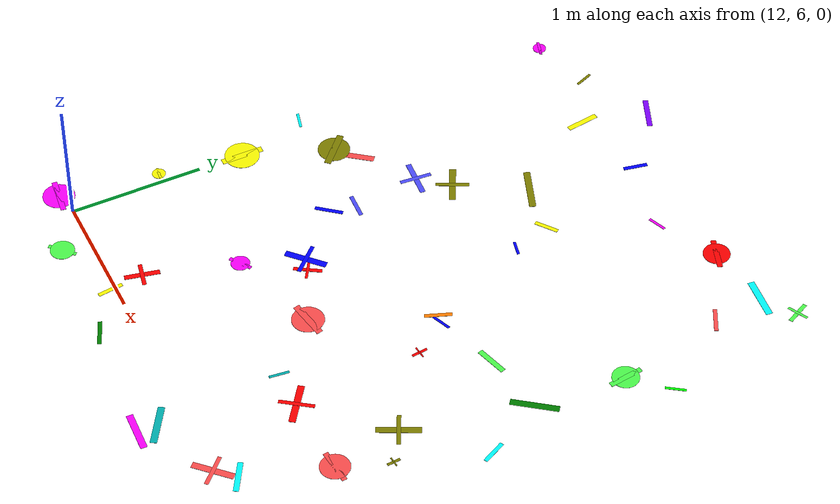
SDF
<sdf version="1.6">
 <world name="default">
  <model name="letter_G_2058">
   <static>true</static>
   <pose>11.82 5.96 0.011 0 0 6.152</pose>
   <link name="link">
    <visual name="visual">
     <geometry><box><size>0.29 0.04 0.002</size></box></geometry>
     <material>
      <ambient>1.0 0.0 1.0 1</ambient>
      <diffuse>1.0 0.0 1.0 1</diffuse>
      <specular>0.1 0.1 0.1 1</specular>
     </material>
    </visual>
    <visual name="visual2">
     <geometry><cylinder><radius>0.12</radius><length>0.002</length></cylinder></geometry>
     <material><ambient>1.0 0.0 1.0 1</ambient><diffuse>1.0 0.0 1.0 1</diffuse></material>
    </visual>
   </link>
  </model>
  <model name="letter_Q_2059">
   <static>true</static>
   <pose>12.33 5.79 0.006 0 0 3.908</pose>
   <link name="link">
    <visual name="visual">
     <geometry><box><size>0.22 0.03 0.002</size></box></geometry>
     <material>
      <ambient>0.3 1.0 0.3 1</ambient>
      <diffuse>0.3 1.0 0.3 1</diffuse>
      <specular>0.1 0.1 0.1 1</specular>
     </material>
    </visual>
    <visual name="visual2">
     <geometry><cylinder><radius>0.09</radius><length>0.002</length></cylinder></geometry>
     <material><ambient>0.3 1.0 0.3 1</ambient><diffuse>0.3 1.0 0.3 1</diffuse></material>
    </visual>
   </link>
  </model>
  <model name="letter_C_2060">
   <static>true</static>
   <pose>12.01 7.34 0.006 0 0 1.571</pose>
   <link name="link">
    <visual name="visual">
     <geometry><box><size>0.32 0.05 0.002</size></box></geometry>
     <material>
      <ambient>1.0 1.0 0.0 1</ambient>
      <diffuse>1.0 1.0 0.0 1</diffuse>
      <specular>0.1 0.1 0.1 1</specular>
     </material>
    </visual>
    <visual name="visual2">
     <geometry><cylinder><radius>0.13</radius><length>0.002</length></cylinder></geometry>
     <material><ambient>1.0 1.0 0.0 1</ambient><diffuse>1.0 1.0 0.0 1</diffuse></material>
    </visual>
   </link>
  </model>
  <model name="letter_O_2062">
   <static>true</static>
   <pose>11.92 6.71 0.008 0 0 6.177</pose>
   <link name="link">
    <visual name="visual">
     <geometry><box><size>0.11 0.02 0.002</size></box></geometry>
     <material>
      <ambient>1.0 1.0 0.0 1</ambient>
      <diffuse>1.0 1.0 0.0 1</diffuse>
      <specular>0.1 0.1 0.1 1</specular>
     </material>
    </visual>
    <visual name="visual2">
     <geometry><cylinder><radius>0.05</radius><length>0.002</length></cylinder></geometry>
     <material><ambient>1.0 1.0 0.0 1</ambient><diffuse>1.0 1.0 0.0 1</diffuse></material>
    </visual>
   </link>
  </model>
  <model name="letter_S_2063">
   <static>true</static>
   <pose>11.86 7.87 0.011 0 0 6.045</pose>
   <link name="link">
    <visual name="visual">
     <geometry><box><size>0.14 0.02 0.002</size></box></geometry>
     <material>
      <ambient>0.0 1.0 1.0 1</ambient>
      <diffuse>0.0 1.0 1.0 1</diffuse>
      <specular>0.1 0.1 0.1 1</specular>
     </material>
    </visual>
   </link>
  </model>
  <model name="letter_O_2064">
   <static>true</static>
   <pose>12.25 7.98 0.011 0 0 5.528</pose>
   <link name="link">
    <visual name="visual">
     <geometry><box><size>0.30 0.05 0.002</size></box></geometry>
     <material>
      <ambient>0.5 0.5 0.0 1</ambient>
      <diffuse>0.5 0.5 0.0 1</diffuse>
      <specular>0.1 0.1 0.1 1</specular>
     </material>
    </visual>
    <visual name="visual2">
     <geometry><cylinder><radius>0.12</radius><length>0.002</length></cylinder></geometry>
     <material><ambient>0.5 0.5 0.0 1</ambient><diffuse>0.5 0.5 0.0 1</diffuse></material>
    </visual>
   </link>
  </model>
  <model name="letter_B_2065">
   <static>true</static>
   <pose>12.37 8.08 0.009 0 0 4.063</pose>
   <link name="link">
    <visual name="visual">
     <geometry><box><size>0.32 0.05 0.002</size></box></geometry>
     <material>
      <ambient>1.0 0.3 0.3 1</ambient>
      <diffuse>1.0 0.3 0.3 1</diffuse>
      <specular>0.1 0.1 0.1 1</specular>
     </material>
    </visual>
   </link>
  </model>
  <model name="letter_Q_2068">
   <static>true</static>
   <pose>11.94 9.85 0.012 0 0 2.852</pose>
   <link name="link">
    <visual name="visual">
     <geometry><box><size>0.13 0.02 0.002</size></box></geometry>
     <material>
      <ambient>1.0 0.0 1.0 1</ambient>
      <diffuse>1.0 0.0 1.0 1</diffuse>
      <specular>0.1 0.1 0.1 1</specular>
     </material>
    </visual>
    <visual name="visual2">
     <geometry><cylinder><radius>0.05</radius><length>0.002</length></cylinder></geometry>
     <material><ambient>1.0 0.0 1.0 1</ambient><diffuse>1.0 0.0 1.0 1</diffuse></material>
    </visual>
   </link>
  </model>
  <model name="letter_Y_2069">
   <static>true</static>
   <pose>12.39 10.00 0.013 0 0 1.954</pose>
   <link name="link">
    <visual name="visual">
     <geometry><box><size>0.14 0.02 0.002</size></box></geometry>
     <material>
      <ambient>0.5 0.5 0.0 1</ambient>
      <diffuse>0.5 0.5 0.0 1</diffuse>
      <specular>0.1 0.1 0.1 1</specular>
     </material>
    </visual>
   </link>
  </model>
  <model name="letter_A_2137">
   <static>true</static>
   <pose>12.80 6.22 0.005 0 0 1.359</pose>
   <link name="link">
    <visual name="visual">
     <geometry><box><size>0.26 0.04 0.002</size></box></geometry>
     <material>
      <ambient>1.0 0.0 0.0 1</ambient>
      <diffuse>1.0 0.0 0.0 1</diffuse>
      <specular>0.1 0.1 0.1 1</specular>
     </material>
    </visual>
    <visual name="visual2">
     <pose>0 0 0.001 0 0 1.57</pose>
     <geometry><box><size>0.20 0.03 0.001</size></box></geometry>
     <material><ambient>1.0 0.0 0.0 1</ambient><diffuse>1.0 0.0 0.0 1</diffuse></material>
    </visual>
   </link>
  </model>
  <model name="letter_N_2138">
   <static>true</static>
   <pose>12.84 5.96 0.009 0 0 4.835</pose>
   <link name="link">
    <visual name="visual">
     <geometry><box><size>0.19 0.03 0.002</size></box></geometry>
     <material>
      <ambient>1.0 1.0 0.0 1</ambient>
      <diffuse>1.0 1.0 0.0 1</diffuse>
      <specular>0.1 0.1 0.1 1</specular>
     </material>
    </visual>
   </link>
  </model>
  <model name="letter_U_2139">
   <static>true</static>
   <pose>13.19 5.74 0.012 0 0 2.742</pose>
   <link name="link">
    <visual name="visual">
     <geometry><box><size>0.21 0.03 0.002</size></box></geometry>
     <material>
      <ambient>0.0 0.5 0.0 1</ambient>
      <diffuse>0.0 0.5 0.0 1</diffuse>
      <specular>0.1 0.1 0.1 1</specular>
     </material>
    </visual>
   </link>
  </model>
  <model name="letter_O_2140">
   <static>true</static>
   <pose>13.00 6.90 0.006 0 0 0.603</pose>
   <link name="link">
    <visual name="visual">
     <geometry><box><size>0.18 0.03 0.002</size></box></geometry>
     <material>
      <ambient>1.0 0.0 1.0 1</ambient>
      <diffuse>1.0 0.0 1.0 1</diffuse>
      <specular>0.1 0.1 0.1 1</specular>
     </material>
    </visual>
    <visual name="visual2">
     <geometry><cylinder><radius>0.07</radius><length>0.002</length></cylinder></geometry>
     <material><ambient>1.0 0.0 1.0 1</ambient><diffuse>1.0 0.0 1.0 1</diffuse></material>
    </visual>
   </link>
  </model>
  <model name="letter_F_2141">
   <static>true</static>
   <pose>13.17 7.34 0.011 0 0 0.760</pose>
   <link name="link">
    <visual name="visual">
     <geometry><box><size>0.32 0.05 0.002</size></box></geometry>
     <material>
      <ambient>0.0 0.0 1.0 1</ambient>
      <diffuse>0.0 0.0 1.0 1</diffuse>
      <specular>0.1 0.1 0.1 1</specular>
     </material>
    </visual>
    <visual name="visual2">
     <pose>0 0 0.001 0 0 1.57</pose>
     <geometry><box><size>0.26 0.03 0.001</size></box></geometry>
     <material><ambient>0.0 0.0 1.0 1</ambient><diffuse>0.0 0.0 1.0 1</diffuse></material>
    </visual>
   </link>
  </model>
  <model name="letter_T_2142">
   <static>true</static>
   <pose>13.27 7.31 0.010 0 0 1.019</pose>
   <link name="link">
    <visual name="visual">
     <geometry><box><size>0.21 0.03 0.002</size></box></geometry>
     <material>
      <ambient>1.0 0.0 0.0 1</ambient>
      <diffuse>1.0 0.0 0.0 1</diffuse>
      <specular>0.1 0.1 0.1 1</specular>
     </material>
    </visual>
    <visual name="visual2">
     <pose>0 0 0.001 0 0 1.57</pose>
     <geometry><box><size>0.17 0.02 0.001</size></box></geometry>
     <material><ambient>1.0 0.0 0.0 1</ambient><diffuse>1.0 0.0 0.0 1</diffuse></material>
    </visual>
   </link>
  </model>
  <model name="letter_S_2143">
   <static>true</static>
   <pose>12.80 7.69 0.009 0 0 0.896</pose>
   <link name="link">
    <visual name="visual">
     <geometry><box><size>0.21 0.03 0.002</size></box></geometry>
     <material>
      <ambient>0.0 0.0 1.0 1</ambient>
      <diffuse>0.0 0.0 1.0 1</diffuse>
      <specular>0.1 0.1 0.1 1</specular>
     </material>
    </visual>
   </link>
  </model>
  <model name="letter_D_2144">
   <static>true</static>
   <pose>12.84 7.89 0.005 0 0 3.087</pose>
   <link name="link">
    <visual name="visual">
     <geometry><box><size>0.20 0.03 0.002</size></box></geometry>
     <material>
      <ambient>0.3 0.3 1.0 1</ambient>
      <diffuse>0.3 0.3 1.0 1</diffuse>
      <specular>0.1 0.1 0.1 1</specular>
     </material>
    </visual>
   </link>
  </model>
  <model name="letter_A_2145">
   <static>true</static>
   <pose>12.78 8.40 0.010 0 0 3.067</pose>
   <link name="link">
    <visual name="visual">
     <geometry><box><size>0.30 0.04 0.002</size></box></geometry>
     <material>
      <ambient>0.3 0.3 1.0 1</ambient>
      <diffuse>0.3 0.3 1.0 1</diffuse>
      <specular>0.1 0.1 0.1 1</specular>
     </material>
    </visual>
    <visual name="visual2">
     <pose>0 0 0.001 0 0 1.57</pose>
     <geometry><box><size>0.24 0.03 0.001</size></box></geometry>
     <material><ambient>0.3 0.3 1.0 1</ambient><diffuse>0.3 0.3 1.0 1</diffuse></material>
    </visual>
   </link>
  </model>
  <model name="letter_X_2146">
   <static>true</static>
   <pose>13.24 9.11 0.008 0 0 2.804</pose>
   <link name="link">
    <visual name="visual">
     <geometry><box><size>0.35 0.05 0.002</size></box></geometry>
     <material>
      <ambient>0.5 0.5 0.0 1</ambient>
      <diffuse>0.5 0.5 0.0 1</diffuse>
      <specular>0.1 0.1 0.1 1</specular>
     </material>
    </visual>
   </link>
  </model>
  <model name="letter_E_2147">
   <static>true</static>
   <pose>12.95 8.62 0.005 0 0 2.685</pose>
   <link name="link">
    <visual name="visual">
     <geometry><box><size>0.31 0.05 0.002</size></box></geometry>
     <material>
      <ambient>0.5 0.5 0.0 1</ambient>
      <diffuse>0.5 0.5 0.0 1</diffuse>
      <specular>0.1 0.1 0.1 1</specular>
     </material>
    </visual>
    <visual name="visual2">
     <pose>0 0 0.001 0 0 1.57</pose>
     <geometry><box><size>0.25 0.03 0.001</size></box></geometry>
     <material><ambient>0.5 0.5 0.0 1</ambient><diffuse>0.5 0.5 0.0 1</diffuse></material>
    </visual>
   </link>
  </model>
  <model name="letter_D_2148">
   <static>true</static>
   <pose>12.91 10.27 0.004 0 0 5.921</pose>
   <link name="link">
    <visual name="visual">
     <geometry><box><size>0.27 0.04 0.002</size></box></geometry>
     <material>
      <ambient>0.5 0.0 1.0 1</ambient>
      <diffuse>0.5 0.0 1.0 1</diffuse>
      <specular>0.1 0.1 0.1 1</specular>
     </material>
    </visual>
   </link>
  </model>
  <model name="letter_M_2149">
   <static>true</static>
   <pose>13.37 9.92 0.010 0 0 4.524</pose>
   <link name="link">
    <visual name="visual">
     <geometry><box><size>0.18 0.03 0.002</size></box></geometry>
     <material>
      <ambient>0.0 0.0 1.0 1</ambient>
      <diffuse>0.0 0.0 1.0 1</diffuse>
      <specular>0.1 0.1 0.1 1</specular>
     </material>
    </visual>
   </link>
  </model>
  <model name="letter_M_2150">
   <static>true</static>
   <pose>12.79 9.78 0.011 0 0 1.714</pose>
   <link name="link">
    <visual name="visual">
     <geometry><box><size>0.25 0.04 0.002</size></box></geometry>
     <material>
      <ambient>1.0 1.0 0.0 1</ambient>
      <diffuse>1.0 1.0 0.0 1</diffuse>
      <specular>0.1 0.1 0.1 1</specular>
     </material>
    </visual>
   </link>
  </model>
  <model name="letter_K_2215">
   <static>true</static>
   <pose>14.13 5.64 0.004 0 0 6.229</pose>
   <link name="link">
    <visual name="visual">
     <geometry><box><size>0.31 0.05 0.002</size></box></geometry>
     <material>
      <ambient>1.0 0.0 1.0 1</ambient>
      <diffuse>1.0 0.0 1.0 1</diffuse>
      <specular>0.1 0.1 0.1 1</specular>
     </material>
    </visual>
   </link>
  </model>
  <model name="letter_R_2216">
   <static>true</static>
   <pose>14.14 5.79 0.008 0 0 5.718</pose>
   <link name="link">
    <visual name="visual">
     <geometry><box><size>0.32 0.05 0.002</size></box></geometry>
     <material>
      <ambient>0.0 0.7 0.7 1</ambient>
      <diffuse>0.0 0.7 0.7 1</diffuse>
      <specular>0.1 0.1 0.1 1</specular>
     </material>
    </visual>
   </link>
  </model>
  <model name="letter_U_2217">
   <static>true</static>
   <pose>14.08 6.73 0.005 0 0 4.610</pose>
   <link name="link">
    <visual name="visual">
     <geometry><box><size>0.15 0.02 0.002</size></box></geometry>
     <material>
      <ambient>0.0 0.7 0.7 1</ambient>
      <diffuse>0.0 0.7 0.7 1</diffuse>
      <specular>0.1 0.1 0.1 1</specular>
     </material>
    </visual>
   </link>
  </model>
  <model name="letter_F_2218">
   <static>true</static>
   <pose>14.38 6.73 0.009 0 0 2.525</pose>
   <link name="link">
    <visual name="visual">
     <geometry><box><size>0.33 0.05 0.002</size></box></geometry>
     <material>
      <ambient>1.0 0.0 0.0 1</ambient>
      <diffuse>1.0 0.0 0.0 1</diffuse>
      <specular>0.1 0.1 0.1 1</specular>
     </material>
    </visual>
    <visual name="visual2">
     <pose>0 0 0.001 0 0 1.57</pose>
     <geometry><box><size>0.26 0.03 0.001</size></box></geometry>
     <material><ambient>1.0 0.0 0.0 1</ambient><diffuse>1.0 0.0 0.0 1</diffuse></material>
    </visual>
   </link>
  </model>
  <model name="letter_O_2219">
   <static>true</static>
   <pose>13.70 7.12 0.004 0 0 3.321</pose>
   <link name="link">
    <visual name="visual">
     <geometry><box><size>0.30 0.05 0.002</size></box></geometry>
     <material>
      <ambient>1.0 0.3 0.3 1</ambient>
      <diffuse>1.0 0.3 0.3 1</diffuse>
      <specular>0.1 0.1 0.1 1</specular>
     </material>
    </visual>
    <visual name="visual2">
     <geometry><cylinder><radius>0.12</radius><length>0.002</length></cylinder></geometry>
     <material><ambient>1.0 0.3 0.3 1</ambient><diffuse>1.0 0.3 0.3 1</diffuse></material>
    </visual>
   </link>
  </model>
  <model name="letter_F_2220">
   <static>true</static>
   <pose>14.32 7.70 0.007 0 0 4.828</pose>
   <link name="link">
    <visual name="visual">
     <geometry><box><size>0.12 0.02 0.002</size></box></geometry>
     <material>
      <ambient>1.0 0.0 0.0 1</ambient>
      <diffuse>1.0 0.0 0.0 1</diffuse>
      <specular>0.1 0.1 0.1 1</specular>
     </material>
    </visual>
    <visual name="visual2">
     <pose>0 0 0.001 0 0 1.57</pose>
     <geometry><box><size>0.10 0.01 0.001</size></box></geometry>
     <material><ambient>1.0 0.0 0.0 1</ambient><diffuse>1.0 0.0 0.0 1</diffuse></material>
    </visual>
   </link>
  </model>
  <model name="letter_X_2221">
   <static>true</static>
   <pose>14.13 7.96 0.005 0 0 0.387</pose>
   <link name="link">
    <visual name="visual">
     <geometry><box><size>0.15 0.02 0.002</size></box></geometry>
     <material>
      <ambient>0.0 0.0 1.0 1</ambient>
      <diffuse>0.0 0.0 1.0 1</diffuse>
      <specular>0.1 0.1 0.1 1</specular>
     </material>
    </visual>
   </link>
  </model>
  <model name="letter_K_2222">
   <static>true</static>
   <pose>14.06 7.97 0.006 0 0 1.218</pose>
   <link name="link">
    <visual name="visual">
     <geometry><box><size>0.20 0.03 0.002</size></box></geometry>
     <material>
      <ambient>1.0 0.5 0.0 1</ambient>
      <diffuse>1.0 0.5 0.0 1</diffuse>
      <specular>0.1 0.1 0.1 1</specular>
     </material>
    </visual>
   </link>
  </model>
  <model name="letter_Z_2223">
   <static>true</static>
   <pose>13.63 9.05 0.010 0 0 0.654</pose>
   <link name="link">
    <visual name="visual">
     <geometry><box><size>0.18 0.03 0.002</size></box></geometry>
     <material>
      <ambient>1.0 1.0 0.0 1</ambient>
      <diffuse>1.0 1.0 0.0 1</diffuse>
      <specular>0.1 0.1 0.1 1</specular>
     </material>
    </visual>
   </link>
  </model>
  <model name="letter_Y_2224">
   <static>true</static>
   <pose>13.72 8.76 0.004 0 0 6.072</pose>
   <link name="link">
    <visual name="visual">
     <geometry><box><size>0.12 0.02 0.002</size></box></geometry>
     <material>
      <ambient>0.0 0.0 1.0 1</ambient>
      <diffuse>0.0 0.0 1.0 1</diffuse>
      <specular>0.1 0.1 0.1 1</specular>
     </material>
    </visual>
   </link>
  </model>
  <model name="letter_X_2225">
   <static>true</static>
   <pose>13.95 9.79 0.009 0 0 3.527</pose>
   <link name="link">
    <visual name="visual">
     <geometry><box><size>0.14 0.02 0.002</size></box></geometry>
     <material>
      <ambient>1.0 0.0 1.0 1</ambient>
      <diffuse>1.0 0.0 1.0 1</diffuse>
      <specular>0.1 0.1 0.1 1</specular>
     </material>
    </visual>
   </link>
  </model>
  <model name="letter_Q_2226">
   <static>true</static>
   <pose>14.39 10.04 0.005 0 0 2.832</pose>
   <link name="link">
    <visual name="visual">
     <geometry><box><size>0.26 0.04 0.002</size></box></geometry>
     <material>
      <ambient>1.0 0.0 0.0 1</ambient>
      <diffuse>1.0 0.0 0.0 1</diffuse>
      <specular>0.1 0.1 0.1 1</specular>
     </material>
    </visual>
    <visual name="visual2">
     <geometry><cylinder><radius>0.10</radius><length>0.002</length></cylinder></geometry>
     <material><ambient>1.0 0.0 0.0 1</ambient><diffuse>1.0 0.0 0.0 1</diffuse></material>
    </visual>
   </link>
  </model>
  <model name="letter_U_2295">
   <static>true</static>
   <pose>14.80 6.11 0.012 0 0 5.751</pose>
   <link name="link">
    <visual name="visual">
     <geometry><box><size>0.25 0.04 0.002</size></box></geometry>
     <material>
      <ambient>0.0 1.0 1.0 1</ambient>
      <diffuse>0.0 1.0 1.0 1</diffuse>
      <specular>0.1 0.1 0.1 1</specular>
     </material>
    </visual>
   </link>
  </model>
  <model name="letter_A_2296">
   <static>true</static>
   <pose>14.67 5.98 0.003 0 0 0.791</pose>
   <link name="link">
    <visual name="visual">
     <geometry><box><size>0.31 0.05 0.002</size></box></geometry>
     <material>
      <ambient>1.0 0.3 0.3 1</ambient>
      <diffuse>1.0 0.3 0.3 1</diffuse>
      <specular>0.1 0.1 0.1 1</specular>
     </material>
    </visual>
    <visual name="visual2">
     <pose>0 0 0.001 0 0 1.57</pose>
     <geometry><box><size>0.25 0.03 0.001</size></box></geometry>
     <material><ambient>1.0 0.3 0.3 1</ambient><diffuse>1.0 0.3 0.3 1</diffuse></material>
    </visual>
   </link>
  </model>
  <model name="letter_H_2297">
   <static>true</static>
   <pose>15.13 7.12 0.004 0 0 1.653</pose>
   <link name="link">
    <visual name="visual">
     <geometry><box><size>0.10 0.02 0.002</size></box></geometry>
     <material>
      <ambient>0.5 0.5 0.0 1</ambient>
      <diffuse>0.5 0.5 0.0 1</diffuse>
      <specular>0.1 0.1 0.1 1</specular>
     </material>
    </visual>
    <visual name="visual2">
     <pose>0 0 0.001 0 0 1.57</pose>
     <geometry><box><size>0.08 0.01 0.001</size></box></geometry>
     <material><ambient>0.5 0.5 0.0 1</ambient><diffuse>0.5 0.5 0.0 1</diffuse></material>
    </visual>
   </link>
  </model>
  <model name="letter_G_2298">
   <static>true</static>
   <pose>15.00 6.74 0.011 0 0 0.087</pose>
   <link name="link">
    <visual name="visual">
     <geometry><box><size>0.27 0.04 0.002</size></box></geometry>
     <material>
      <ambient>1.0 0.3 0.3 1</ambient>
      <diffuse>1.0 0.3 0.3 1</diffuse>
      <specular>0.1 0.1 0.1 1</specular>
     </material>
    </visual>
    <visual name="visual2">
     <geometry><cylinder><radius>0.11</radius><length>0.002</length></cylinder></geometry>
     <material><ambient>1.0 0.3 0.3 1</ambient><diffuse>1.0 0.3 0.3 1</diffuse></material>
    </visual>
   </link>
  </model>
  <model name="letter_L_2299">
   <static>true</static>
   <pose>14.89 7.27 0.004 0 0 4.260</pose>
   <link name="link">
    <visual name="visual">
     <geometry><box><size>0.32 0.05 0.002</size></box></geometry>
     <material>
      <ambient>0.5 0.5 0.0 1</ambient>
      <diffuse>0.5 0.5 0.0 1</diffuse>
      <specular>0.1 0.1 0.1 1</specular>
     </material>
    </visual>
    <visual name="visual2">
     <pose>0 0 0.001 0 0 1.57</pose>
     <geometry><box><size>0.26 0.03 0.001</size></box></geometry>
     <material><ambient>0.5 0.5 0.0 1</ambient><diffuse>0.5 0.5 0.0 1</diffuse></material>
    </visual>
   </link>
  </model>
  <model name="letter_W_2300">
   <static>true</static>
   <pose>14.61 8.12 0.009 0 0 3.429</pose>
   <link name="link">
    <visual name="visual">
     <geometry><box><size>0.24 0.04 0.002</size></box></geometry>
     <material>
      <ambient>0.3 1.0 0.3 1</ambient>
      <diffuse>0.3 1.0 0.3 1</diffuse>
      <specular>0.1 0.1 0.1 1</specular>
     </material>
    </visual>
   </link>
  </model>
  <model name="letter_P_2301">
   <static>true</static>
   <pose>15.35 7.77 0.009 0 0 2.046</pose>
   <link name="link">
    <visual name="visual">
     <geometry><box><size>0.19 0.03 0.002</size></box></geometry>
     <material>
      <ambient>0.0 1.0 1.0 1</ambient>
      <diffuse>0.0 1.0 1.0 1</diffuse>
      <specular>0.1 0.1 0.1 1</specular>
     </material>
    </visual>
   </link>
  </model>
  <model name="letter_Z_2302">
   <static>true</static>
   <pose>15.10 8.21 0.010 0 0 0.936</pose>
   <link name="link">
    <visual name="visual">
     <geometry><box><size>0.35 0.05 0.002</size></box></geometry>
     <material>
      <ambient>0.0 0.5 0.0 1</ambient>
      <diffuse>0.0 0.5 0.0 1</diffuse>
      <specular>0.1 0.1 0.1 1</specular>
     </material>
    </visual>
   </link>
  </model>
  <model name="letter_K_2303">
   <static>true</static>
   <pose>15.39 9.16 0.012 0 0 4.113</pose>
   <link name="link">
    <visual name="visual">
     <geometry><box><size>0.15 0.02 0.002</size></box></geometry>
     <material>
      <ambient>0.0 1.0 0.0 1</ambient>
      <diffuse>0.0 1.0 0.0 1</diffuse>
      <specular>0.1 0.1 0.1 1</specular>
     </material>
    </visual>
   </link>
  </model>
  <model name="letter_O_2304">
   <static>true</static>
   <pose>15.14 8.90 0.005 0 0 4.852</pose>
   <link name="link">
    <visual name="visual">
     <geometry><box><size>0.26 0.04 0.002</size></box></geometry>
     <material>
      <ambient>0.3 1.0 0.3 1</ambient>
      <diffuse>0.3 1.0 0.3 1</diffuse>
      <specular>0.1 0.1 0.1 1</specular>
     </material>
    </visual>
    <visual name="visual2">
     <geometry><cylinder><radius>0.10</radius><length>0.002</length></cylinder></geometry>
     <material><ambient>0.3 1.0 0.3 1</ambient><diffuse>0.3 1.0 0.3 1</diffuse></material>
    </visual>
   </link>
  </model>
  <model name="letter_Z_2305">
   <static>true</static>
   <pose>14.90 10.11 0.005 0 0 3.054</pose>
   <link name="link">
    <visual name="visual">
     <geometry><box><size>0.32 0.05 0.002</size></box></geometry>
     <material>
      <ambient>0.0 1.0 1.0 1</ambient>
      <diffuse>0.0 1.0 1.0 1</diffuse>
      <specular>0.1 0.1 0.1 1</specular>
     </material>
    </visual>
   </link>
  </model>
  <model name="letter_E_2306">
   <static>true</static>
   <pose>15.14 10.28 0.010 0 0 2.050</pose>
   <link name="link">
    <visual name="visual">
     <geometry><box><size>0.19 0.03 0.002</size></box></geometry>
     <material>
      <ambient>0.3 1.0 0.3 1</ambient>
      <diffuse>0.3 1.0 0.3 1</diffuse>
      <specular>0.1 0.1 0.1 1</specular>
     </material>
    </visual>
    <visual name="visual2">
     <pose>0 0 0.001 0 0 1.57</pose>
     <geometry><box><size>0.16 0.02 0.001</size></box></geometry>
     <material><ambient>0.3 1.0 0.3 1</ambient><diffuse>0.3 1.0 0.3 1</diffuse></material>
    </visual>
   </link>
  </model>
  <model name="letter_Z_2307">
   <static>true</static>
   <pose>14.95 9.72 0.010 0 0 2.686</pose>
   <link name="link">
    <visual name="visual">
     <geometry><box><size>0.20 0.03 0.002</size></box></geometry>
     <material>
      <ambient>1.0 0.3 0.3 1</ambient>
      <diffuse>1.0 0.3 0.3 1</diffuse>
      <specular>0.1 0.1 0.1 1</specular>
     </material>
    </visual>
   </link>
  </model>
 </world>
</sdf>
